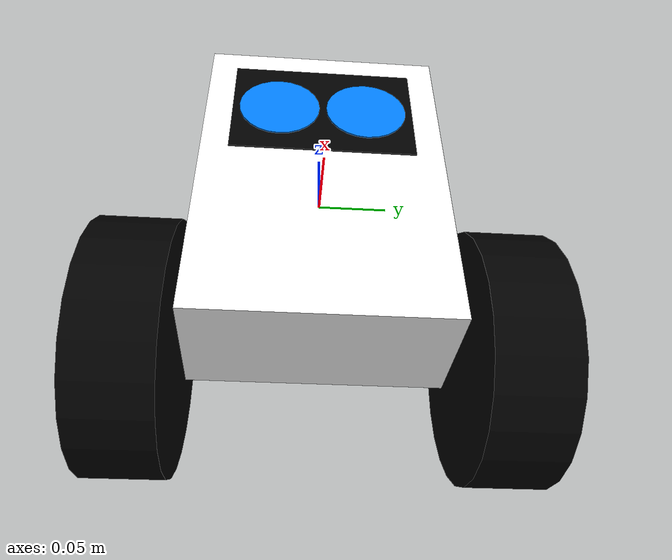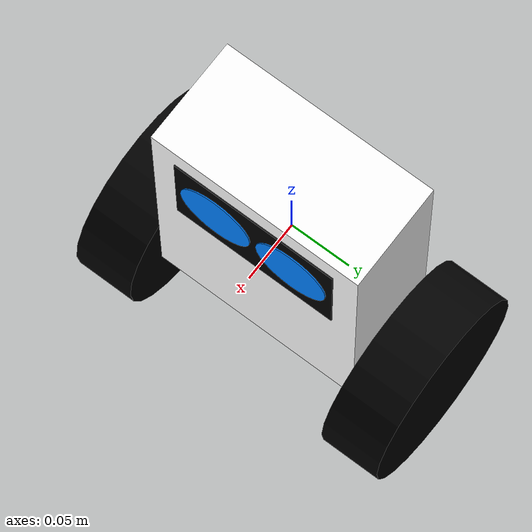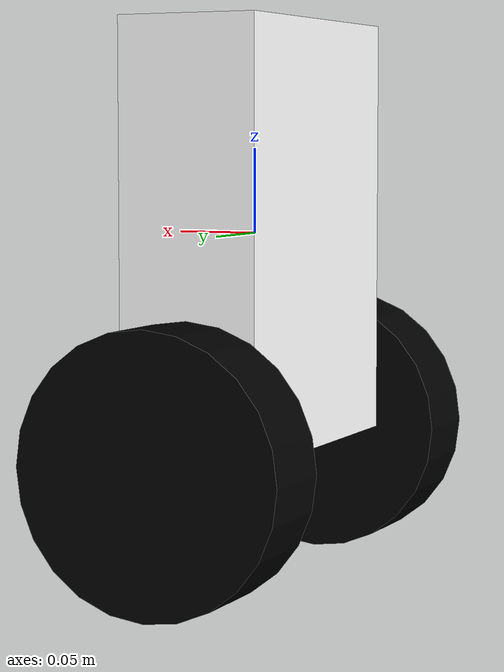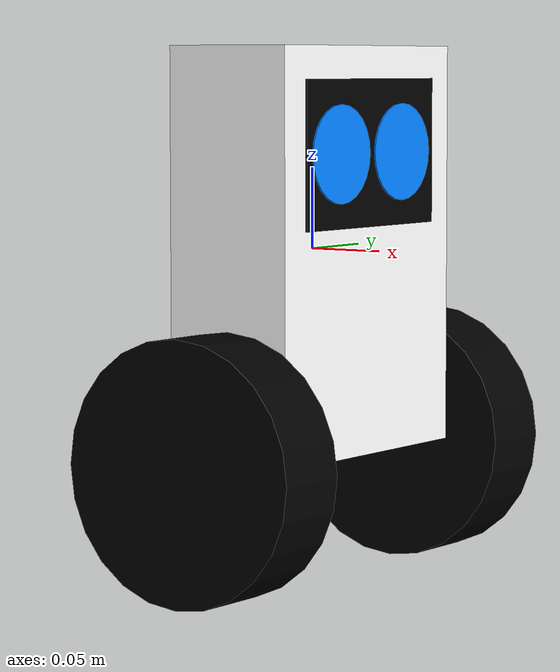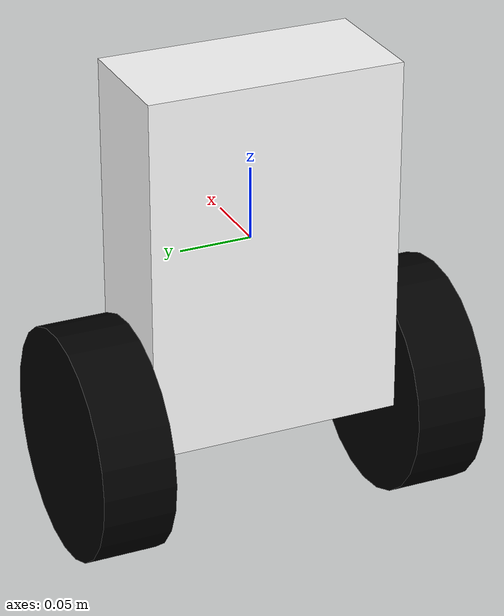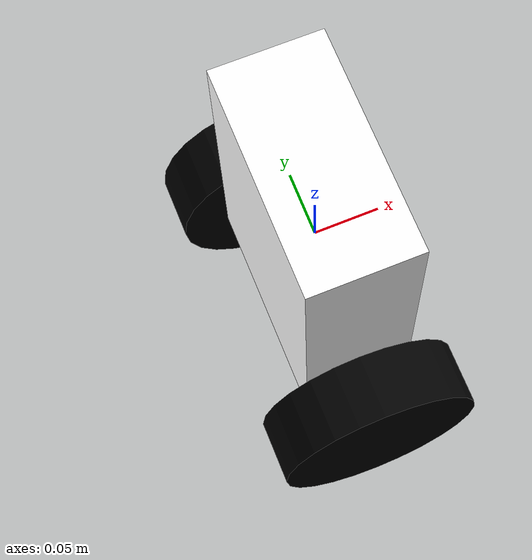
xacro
<?xml version="1.0"?>
<robot name="balancing_robot" xmlns:xacro="http://www.ros.org/wiki/xacro">
    <xacro:include filename="sbr_common_properties.xacro"/>
    <xacro:include filename="sbr_base.xacro"/>
    <xacro:include filename="sbr_imu.xacro"/>
    <xacro:include filename="sbr_gazebo.xacro"/>
    <xacro:include filename="ros2_controller.xacro"/>
</robot>

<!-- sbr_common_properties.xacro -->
<robot xmlns:xacro="http://www.ros.org/wiki/xacro">

    <material name="white">
        <color rgba="1 1 1 1"/>
    </material>
    <material name="black">
        <color rgba="0 0 0 1"/>
    </material>
    <material name="blue">
        <color rgba="0 0.5 1.00 1"/>
    </material>

    <xacro:macro name="box_inertia" params="m x y z o_xyz o_rpy">
        <inertial>
            <mass value="${m}"/>
            <origin xyz="${o_xyz}" rpy="${o_rpy}"/>
            <inertia ixx="${(m*(y*y+z*z))/12}" ixy="0" ixz="0"
                     iyy="${(m*(x*x+z*z))/12}" iyz="0"
                     izz="${(m*(x*x+y*y))/12}"/>
        </inertial>
    </xacro:macro>
    <xacro:macro name="cylinder_inertia" params="m r h o_xyz o_rpy">
        <inertial>
            <mass value="${m}"/>
            <origin xyz="${o_xyz}" rpy="${o_rpy}"/>
            <inertia ixx="${(m*(3*r*r+h*h))/12}" ixy="0" ixz="0"
                     iyy="${(m*(3*r*r+h*h))/12}" iyz="0"
                     izz="${(m*r*r)/2}"/>
        </inertial>
    </xacro:macro>

</robot>

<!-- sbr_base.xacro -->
<robot xmlns:xacro="http://www.ros.org/wiki/xacro">
    <xacro:property name="base_length" value="0.085"/>
    <xacro:property name="base_width"  value="0.175"/>
    <xacro:property name="base_height" value="0.25"/>
    <xacro:property name="wheel_radius" value="0.08"/>
    <xacro:property name="wheel_length" value="0.05"/>
    <xacro:property name="face_depth"  value="0.001"/>
    <xacro:property name="face_width"  value="0.135"/>
    <xacro:property name="face_height" value="0.09"/>
    <xacro:property name="eye_radius" value="0.03"/>
    <xacro:property name="eye_depth"  value="0.001"/>
    <xacro:property name="eye_offset_y" value="0.0325"/>

    <xacro:macro name="wheel_link" params="prefix">
        <link name="${prefix}_wheel_link">
            <visual>
                <origin xyz="0 0 0" rpy="${pi/2} 0 0"/>
                <geometry>
                    <cylinder radius="${wheel_radius}" length="${wheel_length}"/>
                </geometry>
                <material name="black"/>
            </visual>
            <collision>
                <origin xyz="0 0 0" rpy="${pi/2} 0 0"/>
                <geometry>
                    <cylinder radius="${wheel_radius}" length="${wheel_length}"/>
                </geometry>
            </collision>
            <xacro:cylinder_inertia m="0.2" r="${wheel_radius}" h="${wheel_length}"
                              o_xyz="0 0 0" o_rpy="${pi/2.0} 0 0"/>
        </link>
    </xacro:macro>

    <xacro:macro name="eye_link" params="prefix">
        <link name="${prefix}_eye_link">
            <visual>
                <origin xyz="0 0 0" rpy="0 ${pi/2} 0"/>
                <geometry>
                    <cylinder radius="${eye_radius}" length="${eye_depth}"/>
                </geometry>
                <material name="blue"/>
            </visual>
            <collision>
                <origin xyz="0 0 0" rpy="0 ${pi/2} 0"/>
                <geometry>
                    <cylinder radius="${eye_radius}" length="${eye_depth}"/>
                </geometry>
            </collision>
            <xacro:cylinder_inertia m="0.001" r="${eye_radius}" h="${eye_depth}"
                              o_xyz="0 0 0" o_rpy="0 ${pi/2} 0"/>
        </link>
    </xacro:macro>

    <link name="base_link">
        <visual>
            <origin xyz="0 0 0" rpy="0 0 0"/>
            <geometry>
                <box size="${base_length} ${base_width} ${base_height}"/>
            </geometry>
            <material name="white"/>
        </visual>
        <collision>
            <origin xyz="0 0 0" rpy="0 0 0"/>
            <geometry>
                <box size="${base_length} ${base_width} ${base_height}"/>
            </geometry>
        </collision>
        <xacro:box_inertia m="0.75" x="${base_length}" y="${base_width}" z="${base_height}"
                           o_xyz="0 0 0" o_rpy="0 0 0"/>
    </link>

    <xacro:wheel_link prefix="left"/>
    <xacro:wheel_link prefix="right"/>

    <link name="face_panel_link">
        <visual>
            <origin xyz="0 0 0" rpy="0 0 0"/>
            <geometry>
                <box size="${face_depth} ${face_width} ${face_height}"/>
            </geometry>
            <material name="black"/>
        </visual>
        <collision>
            <origin xyz="0 0 0" rpy="0 0 0"/>
            <geometry>
                <box size="${face_depth} ${face_width} ${face_height}"/>
            </geometry>
        </collision>
        <xacro:box_inertia m="0.002" x="${face_depth}" y="${face_width}" z="${face_height}"
                           o_xyz="0 0 0" o_rpy="0 0 0"/>
    </link>

    <xacro:eye_link prefix="left"/>
    <xacro:eye_link prefix="right"/>

    <joint name="base_left_wheel_joint" type="continuous">
        <parent link="base_link"/>
        <child link="left_wheel_link"/>
        <origin xyz="0 ${(base_width + wheel_length)/2} ${-base_height/2}" rpy="0 0 0"/>
        <axis xyz="0 1 0"/>
    </joint>

    <joint name="base_right_wheel_joint" type="continuous">
        <parent link="base_link"/>
        <child link="right_wheel_link"/>
        <origin xyz="0 ${-(base_width + wheel_length)/2} ${-base_height/2}" rpy="0 0 0"/>
        <axis xyz="0 1 0"/>
    </joint>

    <joint name="base_face_panel_joint" type="fixed">
        <parent link="base_link"/>
        <child link="face_panel_link"/>
        <origin xyz="${(base_length/2) + face_depth} 0 ${(base_height/2) - face_height/2 - 0.02}" rpy="0 0 0"/>
    </joint>

    <joint name="face_left_eye_joint" type="fixed">
        <parent link="face_panel_link"/>
        <child link="left_eye_link"/>
        <origin xyz="${(face_depth + eye_depth)/2} ${eye_offset_y} 0" rpy="0 0 0"/>
    </joint>

    <joint name="face_right_eye_joint" type="fixed">
        <parent link="face_panel_link"/>
        <child link="right_eye_link"/>
        <origin xyz="${(face_depth + eye_depth)/2} ${-eye_offset_y} 0" rpy="0 0 0"/>
    </joint>

</robot>

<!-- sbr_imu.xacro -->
<robot xmlns:xacro="http://www.ros.org/wiki/xacro">

    <link name="imu_link"/>

    <joint name="base_imu_joint" type="fixed">
        <parent link="base_link"/>
        <child link="imu_link"/>
        <origin xyz="0 0 0" rpy="0 0 0"/>
    </joint>

    <gazebo reference="imu_link">
        <sensor name="imu_sensor" type="imu">
            <always_on>true</always_on>
            <update_rate>300</update_rate>
            <topic>imu</topic>
            <imu>
                <angular_velocity>
                    <x><noise type="gaussian"><stddev>0.0002</stddev></noise></x>
                    <y><noise type="gaussian"><stddev>0.0002</stddev></noise></y>
                    <z><noise type="gaussian"><stddev>0.0002</stddev></noise></z>
                </angular_velocity>
                <linear_acceleration>
                    <x><noise type="gaussian"><stddev>0.017</stddev></noise></x>
                    <y><noise type="gaussian"><stddev>0.017</stddev></noise></y>
                    <z><noise type="gaussian"><stddev>0.017</stddev></noise></z>
                </linear_acceleration>
            </imu>
        </sensor>
    </gazebo>
</robot>
